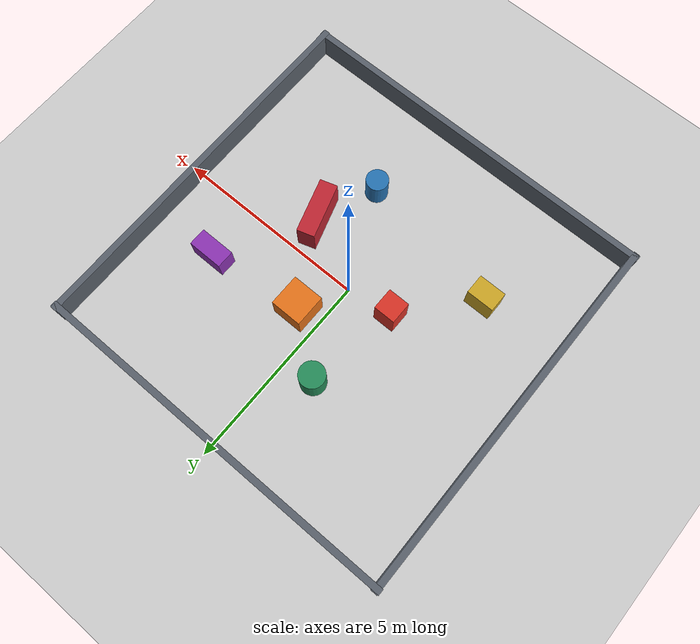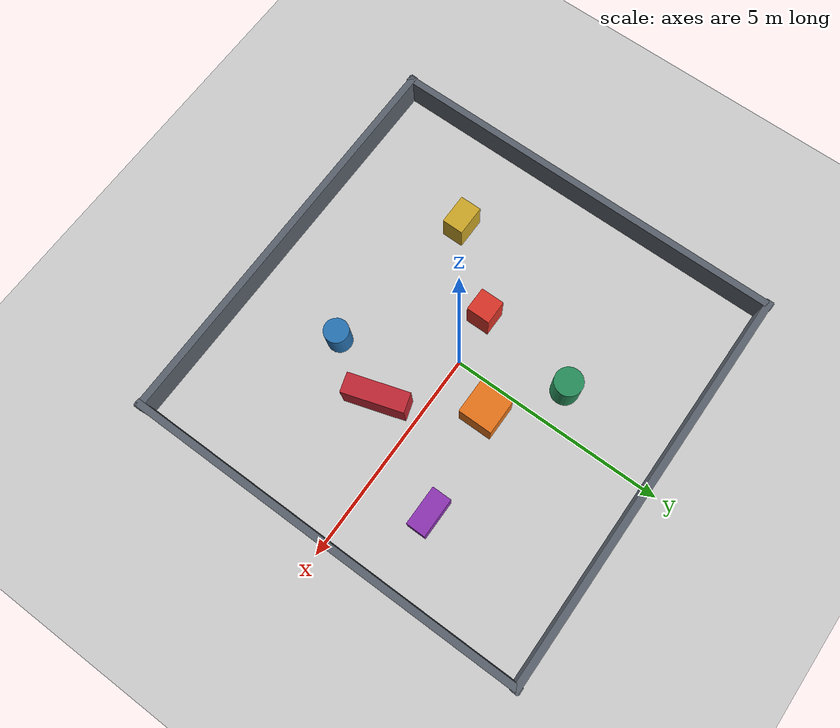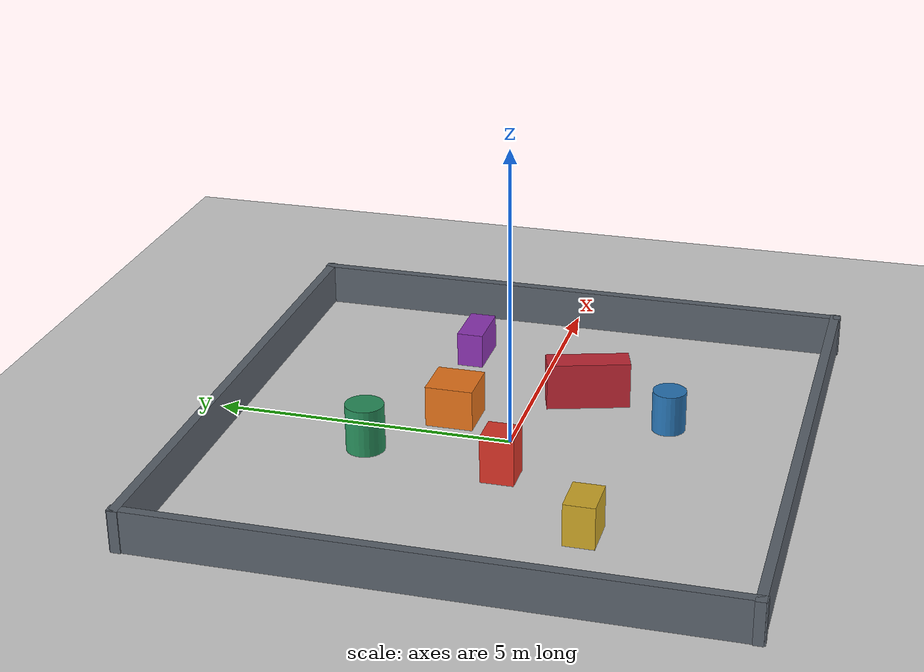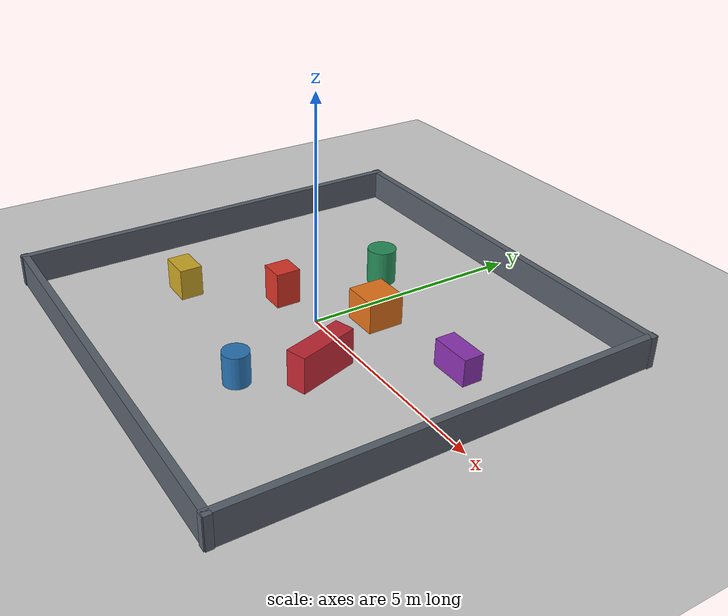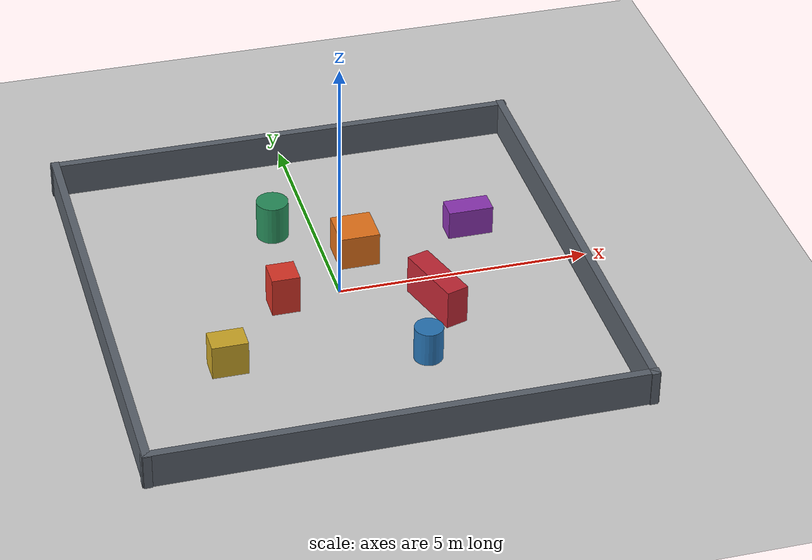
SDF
<?xml version="1.0" ?>
<sdf version="1.6">
  <world name="obstacle_arena">
    <gravity>0 0 -9.8</gravity>
    <physics type="ode">
      <max_step_size>0.004</max_step_size>
      <real_time_factor>1.0</real_time_factor>
      <real_time_update_rate>250</real_time_update_rate>
    </physics>

    <include>
      <uri>model://sun</uri>
    </include>
    <include>
      <uri>model://ground_plane</uri>
    </include>

    <gui fullscreen="0">
      <camera name="user_camera">
        <pose>-7.5 -6.5 5.0 0 0.55 0.75</pose>
      </camera>
    </gui>

    <!-- Arena walls. The robot starts in the south-west and must turn around boxes. -->
    <model name="wall_north">
      <static>true</static>
      <pose>0 4.7 0.35 0 0 0</pose>
      <link name="link">
        <collision name="collision"><geometry><box><size>9.6 0.16 0.7</size></box></geometry></collision>
        <visual name="visual">
          <geometry><box><size>9.6 0.16 0.7</size></box></geometry>
          <material><ambient>0.35 0.38 0.42 1</ambient><diffuse>0.35 0.38 0.42 1</diffuse></material>
        </visual>
      </link>
    </model>
    <model name="wall_south">
      <static>true</static>
      <pose>0 -4.7 0.35 0 0 0</pose>
      <link name="link">
        <collision name="collision"><geometry><box><size>9.6 0.16 0.7</size></box></geometry></collision>
        <visual name="visual">
          <geometry><box><size>9.6 0.16 0.7</size></box></geometry>
          <material><ambient>0.35 0.38 0.42 1</ambient><diffuse>0.35 0.38 0.42 1</diffuse></material>
        </visual>
      </link>
    </model>
    <model name="wall_east">
      <static>true</static>
      <pose>4.7 0 0.35 0 0 0</pose>
      <link name="link">
        <collision name="collision"><geometry><box><size>0.16 9.6 0.7</size></box></geometry></collision>
        <visual name="visual">
          <geometry><box><size>0.16 9.6 0.7</size></box></geometry>
          <material><ambient>0.35 0.38 0.42 1</ambient><diffuse>0.35 0.38 0.42 1</diffuse></material>
        </visual>
      </link>
    </model>
    <model name="wall_west">
      <static>true</static>
      <pose>-4.7 0 0.35 0 0 0</pose>
      <link name="link">
        <collision name="collision"><geometry><box><size>0.16 9.6 0.7</size></box></geometry></collision>
        <visual name="visual">
          <geometry><box><size>0.16 9.6 0.7</size></box></geometry>
          <material><ambient>0.35 0.38 0.42 1</ambient><diffuse>0.35 0.38 0.42 1</diffuse></material>
        </visual>
      </link>
    </model>

    <model name="obstacle_ahead">
      <static>true</static>
      <pose>-1.15 -0.15 0.4 0 0 0</pose>
      <link name="link">
        <collision name="collision"><geometry><box><size>0.55 0.55 0.8</size></box></geometry></collision>
        <visual name="visual">
          <geometry><box><size>0.55 0.55 0.8</size></box></geometry>
          <material><ambient>0.85 0.2 0.15 1</ambient><diffuse>0.85 0.2 0.15 1</diffuse></material>
        </visual>
      </link>
    </model>

    <model name="obstacle_mid">
      <static>true</static>
      <pose>0.6 1.1 0.35 0 0 0</pose>
      <link name="link">
        <collision name="collision"><geometry><box><size>0.8 0.8 0.7</size></box></geometry></collision>
        <visual name="visual">
          <geometry><box><size>0.8 0.8 0.7</size></box></geometry>
          <material><ambient>0.9 0.45 0.1 1</ambient><diffuse>0.9 0.45 0.1 1</diffuse></material>
        </visual>
      </link>
    </model>

    <model name="obstacle_right_wall">
      <static>true</static>
      <pose>1.7 -0.9 0.4 0 0 0.3</pose>
      <link name="link">
        <collision name="collision"><geometry><box><size>0.45 1.4 0.8</size></box></geometry></collision>
        <visual name="visual">
          <geometry><box><size>0.45 1.4 0.8</size></box></geometry>
          <material><ambient>0.75 0.15 0.2 1</ambient><diffuse>0.75 0.15 0.2 1</diffuse></material>
        </visual>
      </link>
    </model>

    <model name="cylinder_north">
      <static>true</static>
      <pose>-0.8 2.2 0.4 0 0 0</pose>
      <link name="link">
        <collision name="collision"><geometry><cylinder><radius>0.32</radius><length>0.8</length></cylinder></geometry></collision>
        <visual name="visual">
          <geometry><cylinder><radius>0.32</radius><length>0.8</length></cylinder></geometry>
          <material><ambient>0.15 0.55 0.35 1</ambient><diffuse>0.15 0.55 0.35 1</diffuse></material>
        </visual>
      </link>
    </model>

    <model name="cylinder_south">
      <static>true</static>
      <pose>1.1 -2.4 0.35 0 0 0</pose>
      <link name="link">
        <collision name="collision"><geometry><cylinder><radius>0.28</radius><length>0.7</length></cylinder></geometry></collision>
        <visual name="visual">
          <geometry><cylinder><radius>0.28</radius><length>0.7</length></cylinder></geometry>
          <material><ambient>0.15 0.45 0.7 1</ambient><diffuse>0.15 0.45 0.7 1</diffuse></material>
        </visual>
      </link>
    </model>

    <model name="obstacle_east">
      <static>true</static>
      <pose>3.0 1.4 0.3 0 0 0</pose>
      <link name="link">
        <collision name="collision"><geometry><box><size>0.9 0.45 0.6</size></box></geometry></collision>
        <visual name="visual">
          <geometry><box><size>0.9 0.45 0.6</size></box></geometry>
          <material><ambient>0.55 0.2 0.7 1</ambient><diffuse>0.55 0.2 0.7 1</diffuse></material>
        </visual>
      </link>
    </model>

    <model name="obstacle_west">
      <static>true</static>
      <pose>-2.6 -1.8 0.35 0 0 0</pose>
      <link name="link">
        <collision name="collision"><geometry><box><size>0.7 0.5 0.7</size></box></geometry></collision>
        <visual name="visual">
          <geometry><box><size>0.7 0.5 0.7</size></box></geometry>
          <material><ambient>0.8 0.65 0.15 1</ambient><diffuse>0.8 0.65 0.15 1</diffuse></material>
        </visual>
      </link>
    </model>
  </world>
</sdf>
